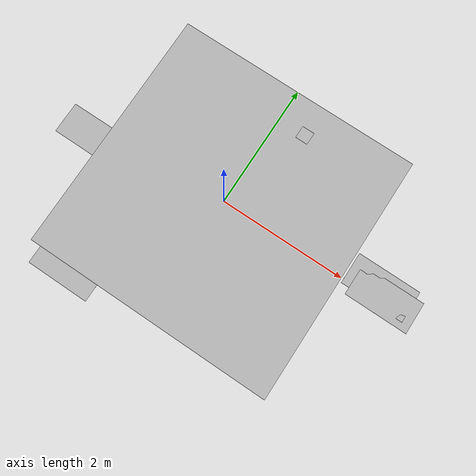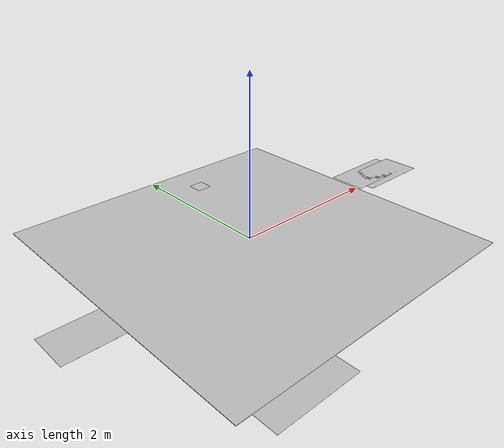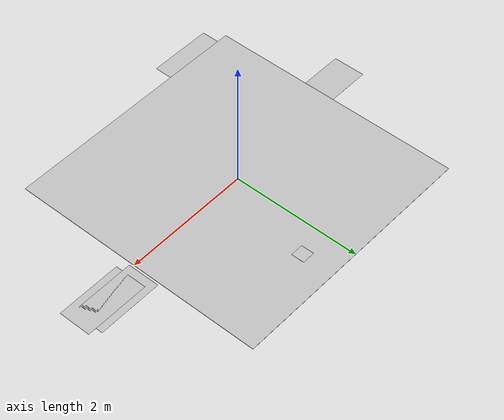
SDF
<sdf version="1.6">
 <world name="default">
  <light name="sun" type="directional">
   <pose>0 0 10 0 -0 0</pose>
   <diffuse>0.8 0.8 0.8 1</diffuse>
   <specular>0.2 0.2 0.2 1</specular>
   <attenuation>
    <range>1000</range>
    <constant>0.9</constant>
    <linear>0.01</linear>
    <quadratic>0.001</quadratic>
   </attenuation>
   <direction>-0.5 0.1 -0.9</direction>
  </light>
  <gravity>0 0 -9.8</gravity>
  <magnetic_field>6e-06 2.3e-05 -4.2e-05</magnetic_field>
  <atmosphere type="adiabatic"/>
  <physics name="default_physics" default="0" type="ode">
   <max_step_size>0.001</max_step_size>
   <real_time_factor>1</real_time_factor>
   <real_time_update_rate>1000</real_time_update_rate>
  </physics>
  <scene><ambient>0.4 0.4 0.4 1</ambient><background>0.7 0.7 0.7 1</background><shadows>1</shadows></scene>
  <spherical_coordinates>
   <surface_model>EARTH_WGS84</surface_model>
   <latitude_deg>0</latitude_deg>
   <longitude_deg>0</longitude_deg>
   <elevation>0</elevation>
   <heading_deg>0</heading_deg>
  </spherical_coordinates>
  <model name="turtlebot3_track">
   <static>1</static>
   <link name="link">
    <collision name="collision">
     <geometry><plane><normal>0 0 1</normal><size>4 4</size></plane></geometry>
     <surface><friction><ode><mu>100</mu><mu2>50</mu2></ode></friction></surface>
    </collision>
    <visual name="visual">
     <cast_shadows>0</cast_shadows>
     <geometry><plane><normal>0 0 1</normal><size>4 4</size></plane></geometry>
     <material>
      <script>
       <uri>model://turtlebot3_autorace_track_lg/materials/scripts</uri>
       <uri>model://turtlebot3_autorace_track_lg/materials/textures</uri>
       <name>Turtlebot3Track_lg/Image</name>
      </script>
     </material>
    </visual>
   </link>
  </model>
  <model name="chess_flag">
   <static>1</static>
   <link name="link">
    <collision name="collision">
     <geometry><plane><normal>0 0 1</normal><size>1 0.5</size></plane></geometry>
     <surface><friction><ode><mu>100</mu><mu2>50</mu2></ode></friction></surface>
    </collision>
    <visual name="visual">
     <cast_shadows>0</cast_shadows>
     <geometry><plane><normal>0 0 1</normal><size>0.2 0.2</size></plane></geometry>
     <material>
      <script>
       <uri>model://chess_flag/materials/scripts</uri>
       <uri>model://chess_flag/materials/textures</uri>
       <name>chess_flag/Image</name>
      </script>
     </material>
    </visual>
   </link>
   <pose>0.445090 1.49 0.01 0 -0 0</pose>
  </model>
  <model name="chess_flag_0">
   <static>1</static>
   <link name="link">
    <collision name="collision">
     <geometry><plane><normal>0 0 1</normal><size>1 0.5</size></plane></geometry>
     <surface><friction><ode><mu>100</mu><mu2>50</mu2></ode></friction></surface>
    </collision>
    <visual name="visual">
     <cast_shadows>0</cast_shadows>
     <geometry><plane><normal>0 0 1</normal><size>1 0.5</size></plane></geometry>
     <material>
      <script>
       <uri>model://scottsdale_left_01/materials/scripts</uri>
       <uri>model://scottsdale_left_01/materials/textures</uri>
       <name>scottsdale_left_01/Image</name>
      </script>
     </material>
    </visual>
   </link>
   <pose>2.66039 0.092049 0 0 -0 0</pose>
  </model>
  <model name="chess_flag_1">
   <static>1</static>
   <link name="link">
    <collision name="collision">
     <geometry><plane><normal>0 0 1</normal><size>1 0.5</size></plane></geometry>
     <surface><friction><ode><mu>100</mu><mu2>50</mu2></ode></friction></surface>
    </collision>
    <visual name="visual">
     <cast_shadows>0</cast_shadows>
     <geometry><plane><normal>0 0 1</normal><size>1 0.5</size></plane></geometry>
     <material>
      <script>
       <uri>model://campari_logo/materials/scripts</uri>
       <uri>model://campari_logo/materials/textures</uri>
       <name>campari/Image</name>
      </script>
     </material>
    </visual>
   </link>
   <pose>-2.17375 -0.247126 0 0 -0 0</pose>
  </model>
  <model name="chess_flag_2">
   <static>1</static>
   <link name="link">
    <collision name="collision">
     <geometry><plane><normal>0 0 1</normal><size>1 0.5</size></plane></geometry>
     <surface><friction><ode><mu>100</mu><mu2>50</mu2></ode></friction></surface>
    </collision>
    <visual name="visual">
     <cast_shadows>0</cast_shadows>
     <geometry><plane><normal>0 0 1</normal><size>1 0.5</size></plane></geometry>
     <material>
      <script>
       <uri>model://scottsdale_right_01/materials/scripts</uri>
       <uri>model://scottsdale_right_01/materials/textures</uri>
       <name>scottsdale_right_01/Image</name>
      </script>
     </material>
    </visual>
   </link>
   <pose>-1.33005 -2.02813 0 0 -0 0</pose>
  </model>
  <model name="chess_flag_4">
   <static>1</static>
   <link name="link">
    <collision name="collision">
     <geometry><plane><normal>0 0 1</normal><size>1 0.5</size></plane></geometry>
     <surface><friction><ode><mu>100</mu><mu2>50</mu2></ode></friction></surface>
    </collision>
    <visual name="visual">
     <cast_shadows>0</cast_shadows>
     <geometry><plane><normal>0 0 1</normal><size>1 0.5</size></plane></geometry>
     <material>
      <script>
       <uri>model://unibas_logo/materials/scripts</uri>
       <uri>model://unibas_logo/materials/textures</uri>
       <name>unibas/Image</name>
      </script>
     </material>
    </visual>
   </link>
   <pose>2.53354 0.197021 0 0 -0 0</pose>
  </model>
  <model name="chess_flag_5">
   <static>1</static>
   <link name="link">
    <collision name="collision">
     <geometry><plane><normal>0 0 1</normal><size>1 0.5</size></plane></geometry>
     <surface><friction><ode><mu>100</mu><mu2>50</mu2></ode></friction></surface>
    </collision>
    <visual name="visual">
     <cast_shadows>0</cast_shadows>
     <geometry><plane><normal>0 0 1</normal><size>1 0.5</size></plane></geometry>
     <material>
      <script>
       <uri>model://milan_logo/materials/scripts</uri>
       <uri>model://milan_logo/materials/textures</uri>
       <name>milan/Image</name>
      </script>
     </material>
    </visual>
   </link>
   <pose>2.53354 0.197021 0 0 -0 0</pose>
  </model>
 </world>
</sdf>
